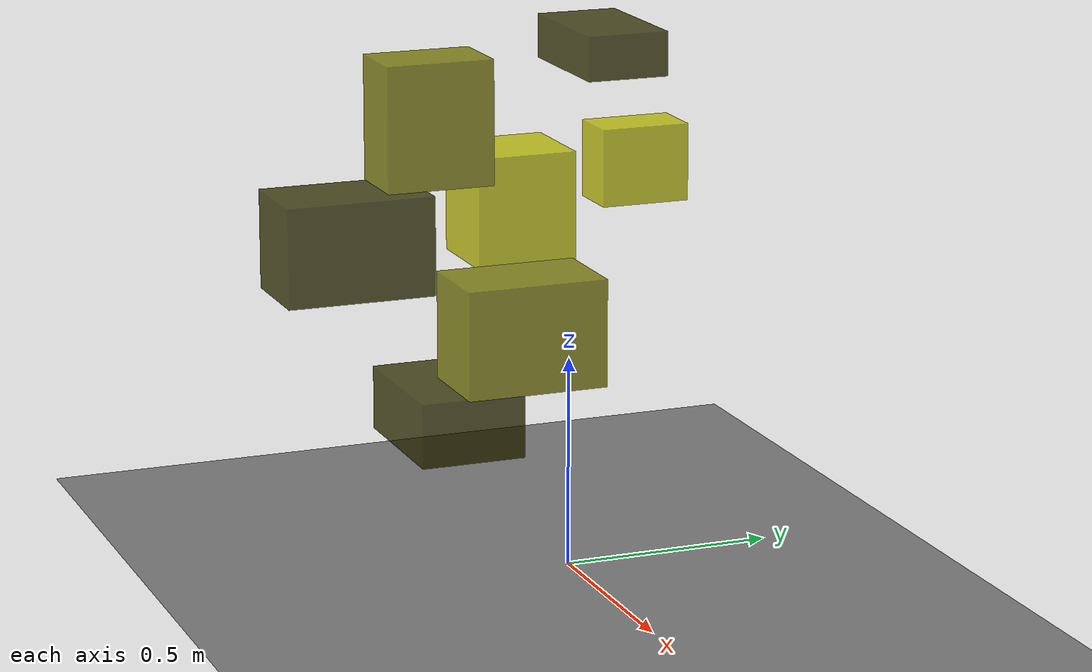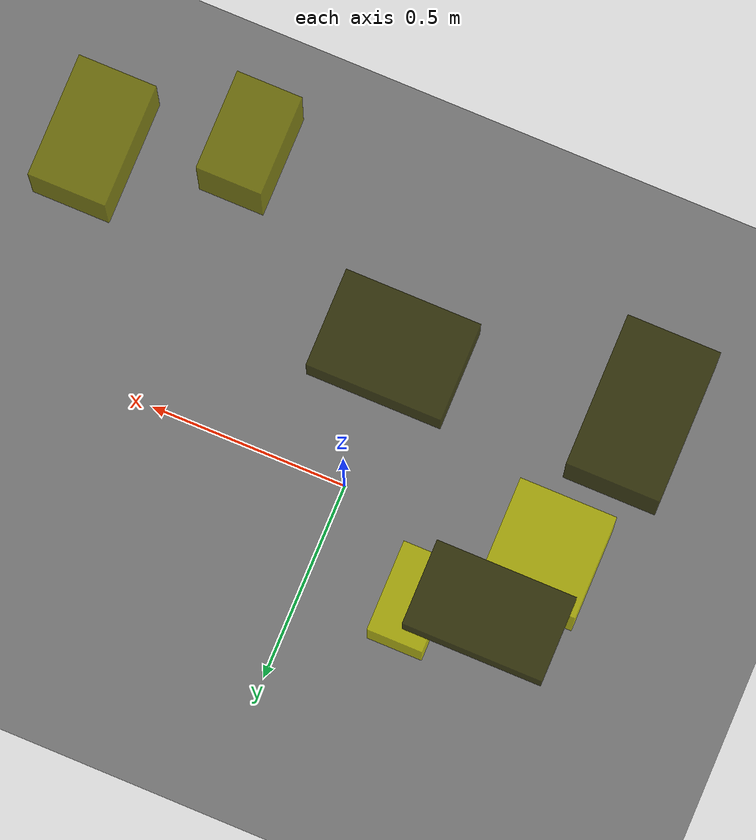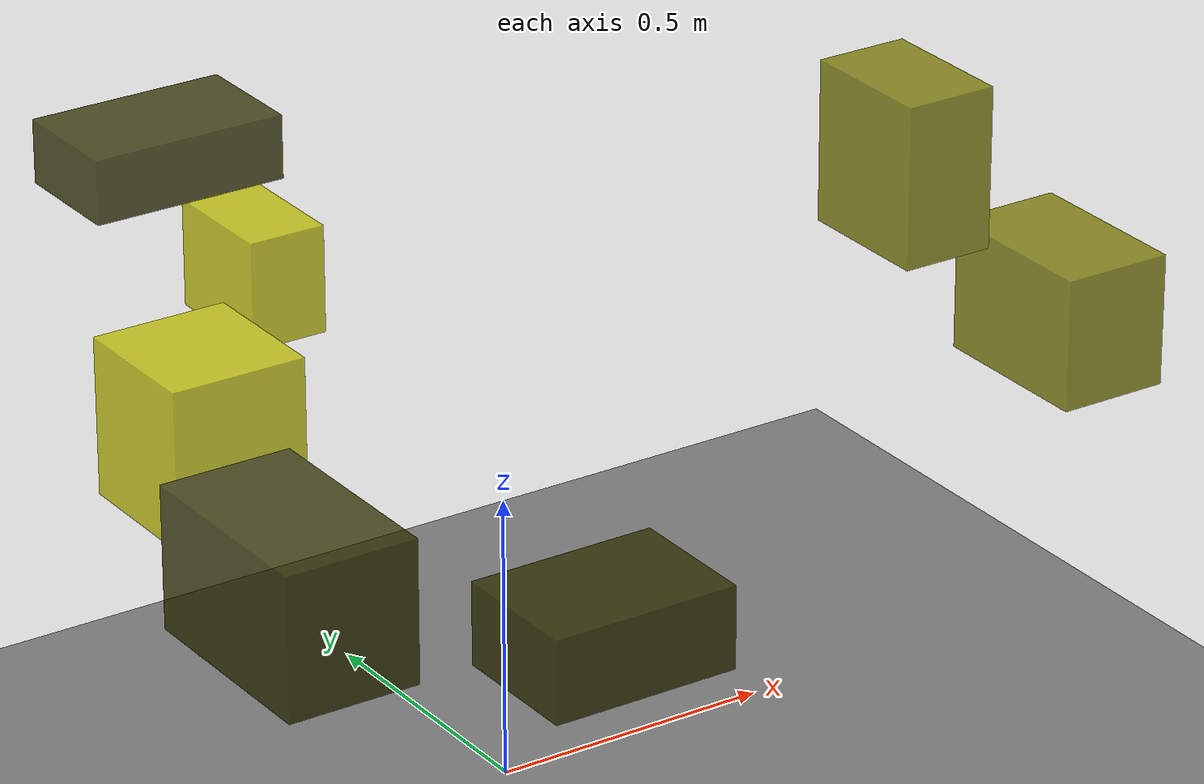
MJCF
<?xml version="1.0"?>
<mujoco model="obstacle_scene">
  <compiler angle="radian" coordinate="local"/>
  <option timestep="0.001" gravity="0 0 -9.81"/>

  <asset>
    <material name="obstacle_mat" rgba="0.8 0.8 0.0 0.8"/>
    <material name="ground_mat" rgba="0.5 0.5 0.5 1"/>
  </asset>

  <worldbody>
    <!-- Ground plane -->
    <geom name="ground" type="plane" size="3 3 0.1" material="ground_mat"/>

    <!-- Obstacles -->
    <body name="obstacle_0" pos="-0.602423 -0.336339 0.664764">
      <geom name="obs_0" type="box" size="0.114817 0.185427 0.123255" rgba="0.2 0.2 0.0 0.8"/>
    </body>
    <body name="obstacle_1" pos="0.425254 -0.490622 1.183449">
      <geom name="obs_1" type="box" size="0.077724 0.117464 0.134789" rgba="0.5 0.5 0.0 0.8"/>
    </body>
    <body name="obstacle_2" pos="-0.289991 0.283854 0.885191">
      <geom name="obs_2" type="box" size="0.066979 0.108045 0.092960" rgba="0.8 0.8 0.0 0.8"/>
    </body>
    <body name="obstacle_3" pos="-0.002978 -0.296107 0.403403">
      <geom name="obs_3" type="box" size="0.170348 0.122495 0.074721" rgba="0.2 0.2 0.0 0.8"/>
    </body>
    <body name="obstacle_4" pos="0.791833 -0.422946 0.815939">
      <geom name="obs_4" type="box" size="0.095222 0.149343 0.113280" rgba="0.5 0.5 0.0 0.8"/>
    </body>
    <body name="obstacle_5" pos="-0.524915 0.056108 0.752512">
      <geom name="obs_5" type="box" size="0.117589 0.123936 0.136256" rgba="0.8 0.8 0.0 0.8"/>
    </body>
    <body name="obstacle_6" pos="-0.464964 0.269617 1.133457">
      <geom name="obs_6" type="box" size="0.166486 0.100640 0.053991" rgba="0.2 0.2 0.0 0.8"/>
    </body>
  </worldbody>
</mujoco>
